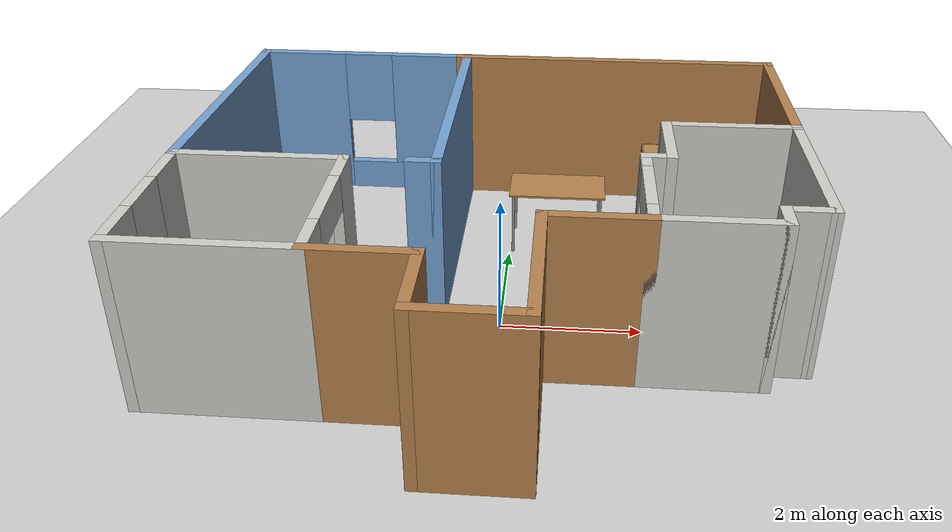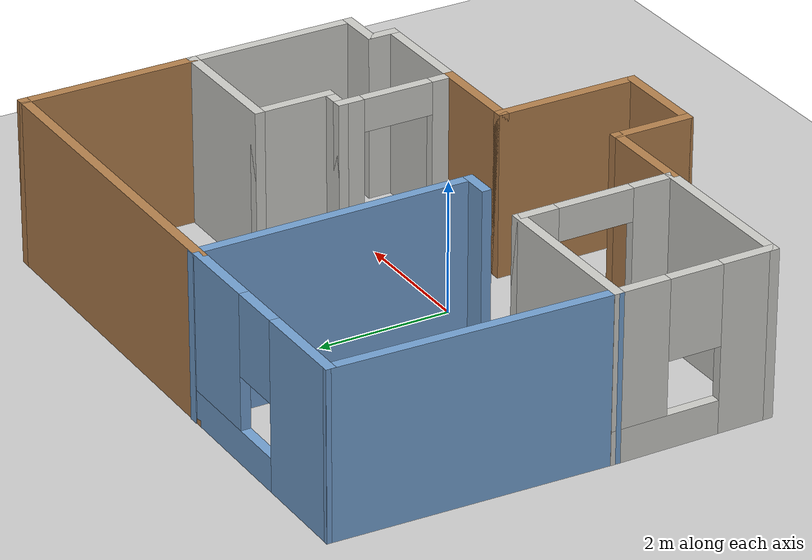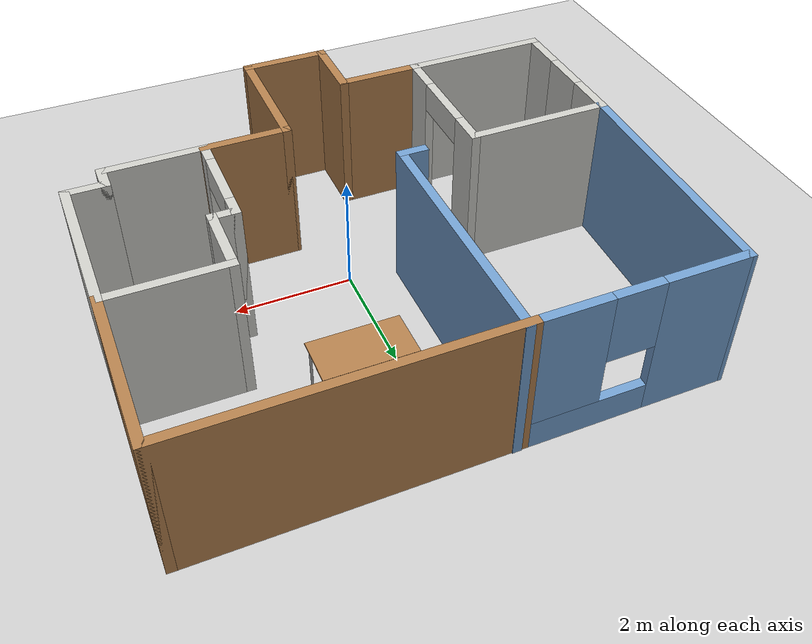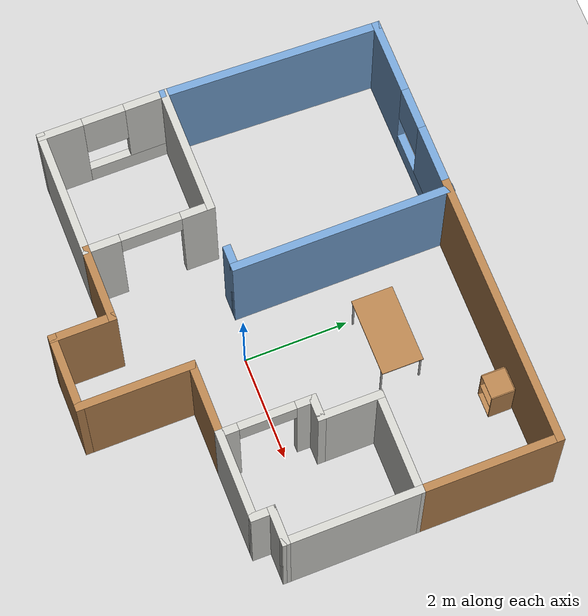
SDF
<sdf version="1.6">
 <world name="default">
  <light name="sun" type="directional">
   <pose>0 0 10 0 -0 0</pose>
   <diffuse>0.8 0.8 0.8 1</diffuse>
   <specular>0.2 0.2 0.2 1</specular>
   <attenuation>
    <range>1000</range>
    <constant>0.9</constant>
    <linear>0.01</linear>
    <quadratic>0.001</quadratic>
   </attenuation>
   <direction>-0.5 0.1 -0.9</direction>
  </light>
  <model name="ground_plane">
   <static>1</static>
   <link name="link">
    <collision name="collision">
     <geometry><plane><normal>0 0 1</normal><size>100 100</size></plane></geometry>
     <surface><friction><ode><mu>100</mu><mu2>50</mu2></ode></friction></surface>
    </collision>
    <visual name="visual">
     <cast_shadows>0</cast_shadows>
     <geometry><plane><normal>0 0 1</normal><size>100 100</size></plane></geometry>
     <material>
      <script><uri>file://media/materials/scripts/gazebo.material</uri><name>Gazebo/Grey</name></script>
     </material>
    </visual>
   </link>
  </model>
  <gravity>0 0 -9.8</gravity>
  <magnetic_field>6e-06 2.3e-05 -4.2e-05</magnetic_field>
  <atmosphere type="adiabatic"/>
  <physics name="default_physics" default="0" type="ode">
   <max_step_size>0.001</max_step_size>
   <real_time_factor>1</real_time_factor>
   <real_time_update_rate>1000</real_time_update_rate>
  </physics>
  <scene><ambient>0.4 0.4 0.4 1</ambient><background>0.7 0.7 0.7 1</background><shadows>1</shadows></scene>
  <audio><device>default</device></audio>
  <spherical_coordinates>
   <surface_model>EARTH_WGS84</surface_model>
   <latitude_deg>0</latitude_deg>
   <longitude_deg>0</longitude_deg>
   <elevation>0</elevation>
   <heading_deg>0</heading_deg>
  </spherical_coordinates>
  <model name="myworld">
   <pose>-0.174261 0.513708 0 0 -0 0</pose>
   <link name="Wall_1">
    <pose>-2.48329 3.76307 0 0 -0 0</pose>
    <visual name="Wall_1_Visual_0">
     <pose>-1.02581 0 1.25 0 -0 0</pose>
     <geometry><box><size>1.44839 0.15 2.5</size></box></geometry>
     <material>
      <script><uri>file://media/materials/scripts/gazebo.material</uri><name>Gazebo/Grey</name></script>
      <ambient>0.447059 0.623529 0.811765 1</ambient>
     </material>
     <meta><layer>0</layer></meta>
    </visual>
    <collision name="Wall_1_Collision_0">
     <geometry><box><size>1.44839 0.15 2.5</size></box></geometry>
     <pose>-1.02581 0 1.25 0 -0 0</pose>
    </collision>
    <visual name="Wall_1_Visual_1">
     <pose>0.724194 0 0.25 0 -0 0</pose>
     <geometry><box><size>2.05161 0.15 0.5</size></box></geometry>
     <material>
      <script><uri>file://media/materials/scripts/gazebo.material</uri><name>Gazebo/Grey</name></script>
      <ambient>0.447059 0.623529 0.811765 1</ambient>
     </material>
     <meta><layer>0</layer></meta>
    </visual>
    <collision name="Wall_1_Collision_1">
     <geometry><box><size>2.05161 0.15 0.5</size></box></geometry>
     <pose>0.724194 0 0.25 0 -0 0</pose>
    </collision>
    <visual name="Wall_1_Visual_2">
     <pose>1.12419 0 1.5 0 -0 0</pose>
     <geometry><box><size>1.25161 0.15 2</size></box></geometry>
     <material>
      <script><uri>file://media/materials/scripts/gazebo.material</uri><name>Gazebo/Grey</name></script>
      <ambient>0.447059 0.623529 0.811765 1</ambient>
     </material>
     <meta><layer>0</layer></meta>
    </visual>
    <collision name="Wall_1_Collision_2">
     <geometry><box><size>1.25161 0.15 2</size></box></geometry>
     <pose>1.12419 0 1.5 0 -0 0</pose>
    </collision>
    <visual name="Wall_1_Visual_3">
     <pose>0.098388 0 1.9 0 -0 0</pose>
     <geometry><box><size>0.8 0.15 1.2</size></box></geometry>
     <material>
      <script><uri>file://media/materials/scripts/gazebo.material</uri><name>Gazebo/Grey</name></script>
      <ambient>0.447059 0.623529 0.811765 1</ambient>
     </material>
     <meta><layer>0</layer></meta>
    </visual>
    <collision name="Wall_1_Collision_3">
     <geometry><box><size>0.8 0.15 1.2</size></box></geometry>
     <pose>0.098388 0 1.9 0 -0 0</pose>
    </collision>
   </link>
   <link name="Wall_2">
    <collision name="Wall_2_Collision">
     <geometry><box><size>5.25 0.15 2.5</size></box></geometry>
     <pose>0 0 1.25 0 -0 0</pose>
    </collision>
    <visual name="Wall_2_Visual">
     <pose>0 0 1.25 0 -0 0</pose>
     <geometry><box><size>5.25 0.15 2.5</size></box></geometry>
     <material>
      <script><uri>file://media/materials/scripts/gazebo.material</uri><name>Gazebo/Wood</name></script>
      <ambient>1 1 1 1</ambient>
     </material>
     <meta><layer>0</layer></meta>
    </visual>
    <pose>1.74171 3.76307 0 0 -0 0</pose>
   </link>
   <link name="Wall_25">
    <collision name="Wall_25_Collision">
     <geometry><box><size>1.5 0.15 2.5</size></box></geometry>
     <pose>0 0 1.25 0 -0 0</pose>
    </collision>
    <visual name="Wall_25_Visual">
     <pose>0 0 1.25 0 -0 0</pose>
     <geometry><box><size>1.5 0.15 2.5</size></box></geometry>
     <material>
      <script><uri>file://media/materials/scripts/gazebo.material</uri><name>Gazebo/Wood</name></script>
      <ambient>1 1 1 1</ambient>
     </material>
     <meta><layer>0</layer></meta>
    </visual>
    <pose>-1.27388 -2.675 0 0 -0 3.14159</pose>
   </link>
   <link name="Wall_26">
    <collision name="Wall_26_Collision">
     <geometry><box><size>2.5 0.15 2.5</size></box></geometry>
     <pose>0 0 1.25 0 -0 0</pose>
    </collision>
    <visual name="Wall_26_Visual">
     <pose>0 0 1.25 0 -0 0</pose>
     <geometry><box><size>2.5 0.15 2.5</size></box></geometry>
     <material>
      <script><uri>file://media/materials/scripts/gazebo.material</uri><name>Gazebo/CeilingTiled</name></script>
      <ambient>1 1 1 1</ambient>
     </material>
     <meta><layer>0</layer></meta>
    </visual>
    <pose>-3.12387 -2.675 0 0 -0 3.14159</pose>
   </link>
   <link name="Wall_27">
    <pose>-4.29887 -1.5 0 0 -0 1.5708</pose>
    <visual name="Wall_27_Visual_0">
     <pose>-0.822146 0 1.25 0 -0 0</pose>
     <geometry><box><size>0.855707 0.15 2.5</size></box></geometry>
     <material>
      <script><uri>file://media/materials/scripts/gazebo.material</uri><name>Gazebo/CeilingTiled</name></script>
      <ambient>1 1 1 1</ambient>
     </material>
     <meta><layer>0</layer></meta>
    </visual>
    <collision name="Wall_27_Collision_0">
     <geometry><box><size>0.855707 0.15 2.5</size></box></geometry>
     <pose>-0.822146 0 1.25 0 -0 0</pose>
    </collision>
    <visual name="Wall_27_Visual_1">
     <pose>0.427854 0 0.25 0 -0 0</pose>
     <geometry><box><size>1.64429 0.15 0.5</size></box></geometry>
     <material>
      <script><uri>file://media/materials/scripts/gazebo.material</uri><name>Gazebo/CeilingTiled</name></script>
      <ambient>1 1 1 1</ambient>
     </material>
     <meta><layer>0</layer></meta>
    </visual>
    <collision name="Wall_27_Collision_1">
     <geometry><box><size>1.64429 0.15 0.5</size></box></geometry>
     <pose>0.427854 0 0.25 0 -0 0</pose>
    </collision>
    <visual name="Wall_27_Visual_2">
     <pose>0.827854 0 1.5 0 -0 0</pose>
     <geometry><box><size>0.844293 0.15 2</size></box></geometry>
     <material>
      <script><uri>file://media/materials/scripts/gazebo.material</uri><name>Gazebo/CeilingTiled</name></script>
      <ambient>1 1 1 1</ambient>
     </material>
     <meta><layer>0</layer></meta>
    </visual>
    <collision name="Wall_27_Collision_2">
     <geometry><box><size>0.844293 0.15 2</size></box></geometry>
     <pose>0.827854 0 1.5 0 -0 0</pose>
    </collision>
    <visual name="Wall_27_Visual_3">
     <pose>0.005707 0 1.9 0 -0 0</pose>
     <geometry><box><size>0.8 0.15 1.2</size></box></geometry>
     <material>
      <script><uri>file://media/materials/scripts/gazebo.material</uri><name>Gazebo/CeilingTiled</name></script>
      <ambient>1 1 1 1</ambient>
     </material>
     <meta><layer>0</layer></meta>
    </visual>
    <collision name="Wall_27_Collision_3">
     <geometry><box><size>0.8 0.15 1.2</size></box></geometry>
     <pose>0.005707 0 1.9 0 -0 0</pose>
    </collision>
   </link>
   <link name="Wall_28">
    <collision name="Wall_28_Collision">
     <geometry><box><size>4.24049 0.15 2.5</size></box></geometry>
     <pose>0 0 1.25 0 -0 0</pose>
    </collision>
    <visual name="Wall_28_Visual">
     <pose>0 0 1.25 0 -0 0</pose>
     <geometry><box><size>4.24049 0.15 2.5</size></box></geometry>
     <material>
      <script><uri>file://media/materials/scripts/gazebo.material</uri><name>Gazebo/Grey</name></script>
      <ambient>0.447059 0.623529 0.811765 1</ambient>
     </material>
     <meta><layer>0</layer></meta>
    </visual>
    <pose>-4.22858 1.71904 0 0 -0 1.53642</pose>
   </link>
   <link name="Wall_31">
    <collision name="Wall_31_Collision">
     <geometry><box><size>4.25 0.15 2.5</size></box></geometry>
     <pose>0 0 1.25 0 -0 0</pose>
    </collision>
    <visual name="Wall_31_Visual">
     <pose>0 0 1.25 0 -0 0</pose>
     <geometry><box><size>4.25 0.15 2.5</size></box></geometry>
     <material>
      <script><uri>file://media/materials/scripts/gazebo.material</uri><name>Gazebo/Grey</name></script>
      <ambient>0.447059 0.623529 0.811765 1</ambient>
     </material>
     <meta><layer>0</layer></meta>
    </visual>
    <pose>-0.698875 1.725 0 0 -0 1.5708</pose>
   </link>
   <link name="Wall_33">
    <collision name="Wall_33_Collision">
     <geometry><box><size>2.75 0.15 2.5</size></box></geometry>
     <pose>0 0 1.25 0 -0 0</pose>
    </collision>
    <visual name="Wall_33_Visual">
     <pose>0 0 1.25 0 -0 0</pose>
     <geometry><box><size>2.75 0.15 2.5</size></box></geometry>
     <material>
      <script><uri>file://media/materials/scripts/gazebo.material</uri><name>Gazebo/Wood</name></script>
      <ambient>1 1 1 1</ambient>
     </material>
     <meta><layer>0</layer></meta>
    </visual>
    <pose>4.29171 2.46307 0 0 -0 -1.5708</pose>
   </link>
   <link name="Wall_34">
    <collision name="Wall_34_Collision">
     <geometry><box><size>2 0.15 2.5</size></box></geometry>
     <pose>0 0 1.25 0 -0 0</pose>
    </collision>
    <visual name="Wall_34_Visual">
     <pose>0 0 1.25 0 -0 0</pose>
     <geometry><box><size>2 0.15 2.5</size></box></geometry>
     <material>
      <script><uri>file://media/materials/scripts/gazebo.material</uri><name>Gazebo/CeilingTiled</name></script>
      <ambient>1 1 1 1</ambient>
     </material>
     <meta><layer>0</layer></meta>
    </visual>
    <pose>3.36671 1.16307 0 0 -0 3.14159</pose>
   </link>
   <link name="Wall_35">
    <collision name="Wall_35_Collision">
     <geometry><box><size>1.25 0.15 2.5</size></box></geometry>
     <pose>0 0 1.25 0 -0 0</pose>
    </collision>
    <visual name="Wall_35_Visual">
     <pose>0 0 1.25 0 -0 0</pose>
     <geometry><box><size>1.25 0.15 2.5</size></box></geometry>
     <material>
      <script><uri>file://media/materials/scripts/gazebo.material</uri><name>Gazebo/CeilingTiled</name></script>
      <ambient>1 1 1 1</ambient>
     </material>
     <meta><layer>0</layer></meta>
    </visual>
    <pose>2.44171 0.613074 0 0 -0 -1.5708</pose>
   </link>
   <link name="Wall_36">
    <collision name="Wall_36_Collision">
     <geometry><box><size>0.5 0.15 2.5</size></box></geometry>
     <pose>0 0 1.25 0 -0 0</pose>
    </collision>
    <visual name="Wall_36_Visual">
     <pose>0 0 1.25 0 -0 0</pose>
     <geometry><box><size>0.5 0.15 2.5</size></box></geometry>
     <material>
      <script><uri>file://media/materials/scripts/gazebo.material</uri><name>Gazebo/CeilingTiled</name></script>
      <ambient>1 1 1 1</ambient>
     </material>
     <meta><layer>0</layer></meta>
    </visual>
    <pose>2.26671 0.063074 0 0 -0 3.14159</pose>
   </link>
   <link name="Wall_37">
    <pose>2.09171 -0.736926 0 0 -0 -1.5708</pose>
    <visual name="Wall_37_Visual_0">
     <pose>-0.672913 0 1.25 0 -0 0</pose>
     <geometry><box><size>0.404174 0.15 2.5</size></box></geometry>
     <material>
      <script><uri>file://media/materials/scripts/gazebo.material</uri><name>Gazebo/CeilingTiled</name></script>
      <ambient>1 1 1 1</ambient>
     </material>
     <meta><layer>0</layer></meta>
    </visual>
    <collision name="Wall_37_Collision_0">
     <geometry><box><size>0.404174 0.15 2.5</size></box></geometry>
     <pose>-0.672913 0 1.25 0 -0 0</pose>
    </collision>
    <visual name="Wall_37_Visual_1">
     <pose>0.73805 0 1.25 0 -0 0</pose>
     <geometry><box><size>0.273901 0.15 2.5</size></box></geometry>
     <material>
      <script><uri>file://media/materials/scripts/gazebo.material</uri><name>Gazebo/CeilingTiled</name></script>
      <ambient>1 1 1 1</ambient>
     </material>
     <meta><layer>0</layer></meta>
    </visual>
    <collision name="Wall_37_Collision_1">
     <geometry><box><size>0.273901 0.15 2.5</size></box></geometry>
     <pose>0.73805 0 1.25 0 -0 0</pose>
    </collision>
    <visual name="Wall_37_Visual_2">
     <pose>0.065137 0 2.25 0 -0 0</pose>
     <geometry><box><size>1.07193 0.15 0.5</size></box></geometry>
     <material>
      <script><uri>file://media/materials/scripts/gazebo.material</uri><name>Gazebo/CeilingTiled</name></script>
      <ambient>1 1 1 1</ambient>
     </material>
     <meta><layer>0</layer></meta>
    </visual>
    <collision name="Wall_37_Collision_2">
     <geometry><box><size>1.07193 0.15 0.5</size></box></geometry>
     <pose>0.065137 0 2.25 0 -0 0</pose>
    </collision>
   </link>
   <link name="Wall_39">
    <collision name="Wall_39_Collision">
     <geometry><box><size>1.5 0.15 2.5</size></box></geometry>
     <pose>0 0 1.25 0 -0 0</pose>
    </collision>
    <visual name="Wall_39_Visual">
     <pose>0 0 1.25 0 -0 0</pose>
     <geometry><box><size>1.5 0.15 2.5</size></box></geometry>
     <material>
      <script><uri>file://media/materials/scripts/gazebo.material</uri><name>Gazebo/Wood</name></script>
      <ambient>1 1 1 1</ambient>
     </material>
     <meta><layer>0</layer></meta>
    </visual>
    <pose>1.42613 -1.675 0 0 -0 0</pose>
   </link>
   <link name="Wall_41">
    <collision name="Wall_41_Collision">
     <geometry><box><size>1.75 0.15 2.5</size></box></geometry>
     <pose>0 0 1.25 0 -0 0</pose>
    </collision>
    <visual name="Wall_41_Visual">
     <pose>0 0 1.25 0 -0 0</pose>
     <geometry><box><size>1.75 0.15 2.5</size></box></geometry>
     <material>
      <script><uri>file://media/materials/scripts/gazebo.material</uri><name>Gazebo/CeilingTiled</name></script>
      <ambient>1 1 1 1</ambient>
     </material>
     <meta><layer>0</layer></meta>
    </visual>
    <pose>2.90112 -1.675 0 0 -0 0</pose>
   </link>
   <link name="Wall_42">
    <collision name="Wall_42_Collision">
     <geometry><box><size>0.5 0.15 2.5</size></box></geometry>
     <pose>0 0 1.25 0 -0 0</pose>
    </collision>
    <visual name="Wall_42_Visual">
     <pose>0 0 1.25 0 -0 0</pose>
     <geometry><box><size>0.5 0.15 2.5</size></box></geometry>
     <material>
      <script><uri>file://media/materials/scripts/gazebo.material</uri><name>Gazebo/CeilingTiled</name></script>
      <ambient>1 1 1 1</ambient>
     </material>
     <meta><layer>0</layer></meta>
    </visual>
    <pose>3.70113 -1.5 0 0 -0 1.5708</pose>
   </link>
   <link name="Wall_43">
    <collision name="Wall_43_Collision">
     <geometry><box><size>0.75 0.15 2.5</size></box></geometry>
     <pose>0 0 1.25 0 -0 0</pose>
    </collision>
    <visual name="Wall_43_Visual">
     <pose>0 0 1.25 0 -0 0</pose>
     <geometry><box><size>0.75 0.15 2.5</size></box></geometry>
     <material>
      <script><uri>file://media/materials/scripts/gazebo.material</uri><name>Gazebo/CeilingTiled</name></script>
      <ambient>1 1 1 1</ambient>
     </material>
     <meta><layer>0</layer></meta>
    </visual>
    <pose>4.00113 -1.325 0 0 -0 0</pose>
   </link>
   <link name="Wall_44">
    <collision name="Wall_44_Collision">
     <geometry><box><size>2.63809 0.15 2.5</size></box></geometry>
     <pose>0 0 1.25 0 -0 0</pose>
    </collision>
    <visual name="Wall_44_Visual">
     <pose>0 0 1.25 0 -0 0</pose>
     <geometry><box><size>2.63809 0.15 2.5</size></box></geometry>
     <material>
      <script><uri>file://media/materials/scripts/gazebo.material</uri><name>Gazebo/CeilingTiled</name></script>
      <ambient>1 1 1 1</ambient>
     </material>
     <meta><layer>0</layer></meta>
    </visual>
    <pose>4.29642 -0.080963 0 0 -0 1.57458</pose>
   </link>
   <link name="Wall_48">
    <collision name="Wall_48_Collision">
     <geometry><box><size>2.5 0.15 2.5</size></box></geometry>
     <pose>0 0 1.25 0 -0 0</pose>
    </collision>
    <visual name="Wall_48_Visual">
     <pose>0 0 1.25 0 -0 0</pose>
     <geometry><box><size>2.5 0.15 2.5</size></box></geometry>
     <material>
      <script><uri>file://media/materials/scripts/gazebo.material</uri><name>Gazebo/CeilingTiled</name></script>
      <ambient>1 1 1 1</ambient>
     </material>
     <meta><layer>0</layer></meta>
    </visual>
    <pose>-3.12387 -0.325 0 0 -0 0</pose>
   </link>
   <link name="Wall_49">
    <pose>-1.94887 -1.5 0 0 -0 -1.5708</pose>
    <visual name="Wall_49_Visual_0">
     <pose>-0.934469 0 1.25 0 -0 0</pose>
     <geometry><box><size>0.631063 0.15 2.5</size></box></geometry>
     <material>
      <script><uri>file://media/materials/scripts/gazebo.material</uri><name>Gazebo/CeilingTiled</name></script>
      <ambient>1 1 1 1</ambient>
     </material>
     <meta><layer>0</layer></meta>
    </visual>
    <collision name="Wall_49_Collision_0">
     <geometry><box><size>0.631063 0.15 2.5</size></box></geometry>
     <pose>-0.934469 0 1.25 0 -0 0</pose>
    </collision>
    <visual name="Wall_49_Visual_1">
     <pose>0.891169 0 1.25 0 -0 0</pose>
     <geometry><box><size>0.717662 0.15 2.5</size></box></geometry>
     <material>
      <script><uri>file://media/materials/scripts/gazebo.material</uri><name>Gazebo/CeilingTiled</name></script>
      <ambient>1 1 1 1</ambient>
     </material>
     <meta><layer>0</layer></meta>
    </visual>
    <collision name="Wall_49_Collision_1">
     <geometry><box><size>0.717662 0.15 2.5</size></box></geometry>
     <pose>0.891169 0 1.25 0 -0 0</pose>
    </collision>
    <visual name="Wall_49_Visual_2">
     <pose>-0.0433 0 2.25 0 -0 0</pose>
     <geometry><box><size>1.15128 0.15 0.5</size></box></geometry>
     <material>
      <script><uri>file://media/materials/scripts/gazebo.material</uri><name>Gazebo/CeilingTiled</name></script>
      <ambient>1 1 1 1</ambient>
     </material>
     <meta><layer>0</layer></meta>
    </visual>
    <collision name="Wall_49_Collision_2">
     <geometry><box><size>1.15128 0.15 0.5</size></box></geometry>
     <pose>-0.0433 0 2.25 0 -0 0</pose>
    </collision>
   </link>
   <link name="Wall_52">
    <collision name="Wall_52_Collision">
     <geometry><box><size>0.5 0.15 2.5</size></box></geometry>
     <pose>0 0 1.25 0 -0 0</pose>
    </collision>
    <visual name="Wall_52_Visual">
     <pose>0 0 1.25 0 -0 0</pose>
     <geometry><box><size>0.5 0.15 2.5</size></box></geometry>
     <material>
      <script><uri>file://media/materials/scripts/gazebo.material</uri><name>Gazebo/Grey</name></script>
      <ambient>0.447059 0.623529 0.811765 1</ambient>
     </material>
     <meta><layer>0</layer></meta>
    </visual>
    <pose>-0.873875 -0.325 0 0 -0 3.14159</pose>
   </link>
   <link name="Wall_7">
    <collision name="Wall_7_Collision">
     <geometry><box><size>2.25 0.15 2.5</size></box></geometry>
     <pose>0 0 1.25 0 -0 0</pose>
    </collision>
    <visual name="Wall_7_Visual">
     <pose>0 0 1.25 0 -0 0</pose>
     <geometry><box><size>2.25 0.15 2.5</size></box></geometry>
     <material>
      <script><uri>file://media/materials/scripts/gazebo.material</uri><name>Gazebo/Wood</name></script>
      <ambient>1 1 1 1</ambient>
     </material>
     <meta><layer>0</layer></meta>
    </visual>
    <pose>0.751125 -2.725 0 0 -0 -1.5708</pose>
   </link>
   <link name="Wall_8">
    <collision name="Wall_8_Collision">
     <geometry><box><size>1.5 0.15 2.5</size></box></geometry>
     <pose>0 0 1.25 0 -0 0</pose>
    </collision>
    <visual name="Wall_8_Visual">
     <pose>0 0 1.25 0 -0 0</pose>
     <geometry><box><size>1.5 0.15 2.5</size></box></geometry>
     <material>
      <script><uri>file://media/materials/scripts/gazebo.material</uri><name>Gazebo/Wood</name></script>
      <ambient>1 1 1 1</ambient>
     </material>
     <meta><layer>0</layer></meta>
    </visual>
    <pose>0.076125 -3.775 0 0 -0 3.14159</pose>
   </link>
   <link name="Wall_9">
    <collision name="Wall_9_Collision">
     <geometry><box><size>1.25 0.15 2.5</size></box></geometry>
     <pose>0 0 1.25 0 -0 0</pose>
    </collision>
    <visual name="Wall_9_Visual">
     <pose>0 0 1.25 0 -0 0</pose>
     <geometry><box><size>1.25 0.15 2.5</size></box></geometry>
     <material>
      <script><uri>file://media/materials/scripts/gazebo.material</uri><name>Gazebo/Wood</name></script>
      <ambient>1 1 1 1</ambient>
     </material>
     <meta><layer>0</layer></meta>
    </visual>
    <pose>-0.598875 -3.225 0 0 -0 1.5708</pose>
   </link>
   <static>1</static>
  </model>
  <model name="cabinet">
   <static>1</static>
   <link name="cabinet_bottom_plate">
    <inertial>
     <pose>0 0 -1 0 -0 0</pose>
     <inertia><ixx>2.05</ixx><ixy>0</ixy><ixz>0</ixz><iyy>2.05</iyy><iyz>0</iyz><izz>2.05</izz></inertia>
     <mass>25</mass>
    </inertial>
    <collision name="cabinet_bottom_plate_geom">
     <pose>0 0 0.01 0 -0 0</pose>
     <geometry><box><size>0.45 0.45 0.02</size></box></geometry>
    </collision>
    <visual name="cabinet_bottom_plate_geom_visual">
     <pose>0 0 0.01 0 -0 0</pose>
     <geometry><box><size>0.45 0.45 0.02</size></box></geometry>
     <material>
      <script><uri>file://media/materials/scripts/gazebo.material</uri><name>Gazebo/Wood</name></script>
     </material>
    </visual>
    <collision name="cabinet_bottom_plate_geom_cabinet_back_plate">
     <pose>0.235 0 0.51 0 -0 0</pose>
     <geometry><box><size>0.02 0.45 1.02</size></box></geometry>
    </collision>
    <visual name="cabinet_bottom_plate_geom_cabinet_back_plate_visual">
     <pose>0.235 0 0.51 0 -0 0</pose>
     <geometry><box><size>0.02 0.45 1.02</size></box></geometry>
     <material>
      <script><uri>file://media/materials/scripts/gazebo.material</uri><name>Gazebo/Wood</name></script>
     </material>
    </visual>
    <collision name="cabinet_bottom_plate_geom_cabinet_left_plate">
     <pose>0 0.235 0.51 0 -0 0</pose>
     <geometry><box><size>0.45 0.02 1.02</size></box></geometry>
    </collision>
    <visual name="cabinet_bottom_plate_geom_cabinet_left_plate_visual">
     <pose>0 0.235 0.51 0 -0 0</pose>
     <geometry><box><size>0.45 0.02 1.02</size></box></geometry>
     <material>
      <script><uri>file://media/materials/scripts/gazebo.material</uri><name>Gazebo/Wood</name></script>
     </material>
    </visual>
    <collision name="cabinet_bottom_plate_geom_cabinet_middle_plate">
     <pose>0 0 0.51 0 -0 0</pose>
     <geometry><box><size>0.45 0.45 0.02</size></box></geometry>
    </collision>
    <visual name="cabinet_bottom_plate_geom_cabinet_middle_plate_visual">
     <pose>0 0 0.51 0 -0 0</pose>
     <geometry><box><size>0.45 0.45 0.02</size></box></geometry>
     <material>
      <script><uri>file://media/materials/scripts/gazebo.material</uri><name>Gazebo/Wood</name></script>
     </material>
    </visual>
    <collision name="cabinet_bottom_plate_geom_cabinet_right_plate">
     <pose>0 -0.235 0.51 0 -0 0</pose>
     <geometry><box><size>0.45 0.02 1.02</size></box></geometry>
    </collision>
    <visual name="cabinet_bottom_plate_geom_cabinet_right_plate_visual">
     <pose>0 -0.235 0.51 0 -0 0</pose>
     <geometry><box><size>0.45 0.02 1.02</size></box></geometry>
     <material>
      <script><uri>file://media/materials/scripts/gazebo.material</uri><name>Gazebo/Wood</name></script>
     </material>
    </visual>
    <collision name="cabinet_bottom_plate_geom_cabinet_top_plate">
     <pose>0 0 1.01 0 -0 0</pose>
     <geometry><box><size>0.45 0.45 0.02</size></box></geometry>
    </collision>
    <visual name="cabinet_bottom_plate_geom_cabinet_top_plate_visual">
     <pose>0 0 1.01 0 -0 0</pose>
     <geometry><box><size>0.45 0.45 0.02</size></box></geometry>
     <material>
      <script><uri>file://media/materials/scripts/gazebo.material</uri><name>Gazebo/Wood</name></script>
     </material>
    </visual>
   </link>
   <pose>2.39473 3.95757 0 0 -0 1.56984</pose>
  </model>
  <model name="table">
   <static>1</static>
   <link name="link">
    <collision name="surface">
     <pose>0 0 1 0 -0 0</pose>
     <geometry><box><size>1.5 0.8 0.03</size></box></geometry>
     <surface><friction><ode><mu>0.6</mu><mu2>0.6</mu2></ode></friction></surface>
    </collision>
    <visual name="visual1">
     <pose>0 0 1 0 -0 0</pose>
     <geometry><box><size>1.5 0.8 0.03</size></box></geometry>
     <material>
      <script><uri>file://media/materials/scripts/gazebo.material</uri><name>Gazebo/Wood</name></script>
     </material>
    </visual>
    <collision name="front_left_leg">
     <pose>0.68 0.38 0.5 0 -0 0</pose>
     <geometry><cylinder><radius>0.02</radius><length>1</length></cylinder></geometry>
    </collision>
    <visual name="front_left_leg">
     <pose>0.68 0.38 0.5 0 -0 0</pose>
     <geometry><cylinder><radius>0.02</radius><length>1</length></cylinder></geometry>
     <material>
      <script><uri>file://media/materials/scripts/gazebo.material</uri><name>Gazebo/Grey</name></script>
     </material>
    </visual>
    <collision name="front_right_leg">
     <pose>0.68 -0.38 0.5 0 -0 0</pose>
     <geometry><cylinder><radius>0.02</radius><length>1</length></cylinder></geometry>
    </collision>
    <visual name="front_right_leg">
     <pose>0.68 -0.38 0.5 0 -0 0</pose>
     <geometry><cylinder><radius>0.02</radius><length>1</length></cylinder></geometry>
     <material>
      <script><uri>file://media/materials/scripts/gazebo.material</uri><name>Gazebo/Grey</name></script>
     </material>
    </visual>
    <collision name="back_right_leg">
     <pose>-0.68 -0.38 0.5 0 -0 0</pose>
     <geometry><cylinder><radius>0.02</radius><length>1</length></cylinder></geometry>
    </collision>
    <visual name="back_right_leg">
     <pose>-0.68 -0.38 0.5 0 -0 0</pose>
     <geometry><cylinder><radius>0.02</radius><length>1</length></cylinder></geometry>
     <material>
      <script><uri>file://media/materials/scripts/gazebo.material</uri><name>Gazebo/Grey</name></script>
     </material>
    </visual>
    <collision name="back_left_leg">
     <pose>-0.68 0.38 0.5 0 -0 0</pose>
     <geometry><cylinder><radius>0.02</radius><length>1</length></cylinder></geometry>
    </collision>
    <visual name="back_left_leg">
     <pose>-0.68 0.38 0.5 0 -0 0</pose>
     <geometry><cylinder><radius>0.02</radius><length>1</length></cylinder></geometry>
     <material>
      <script><uri>file://media/materials/scripts/gazebo.material</uri><name>Gazebo/Grey</name></script>
     </material>
    </visual>
   </link>
   <pose>0.732769 2.48747 -0 0 -0 0</pose>
  </model>
 </world>
</sdf>
